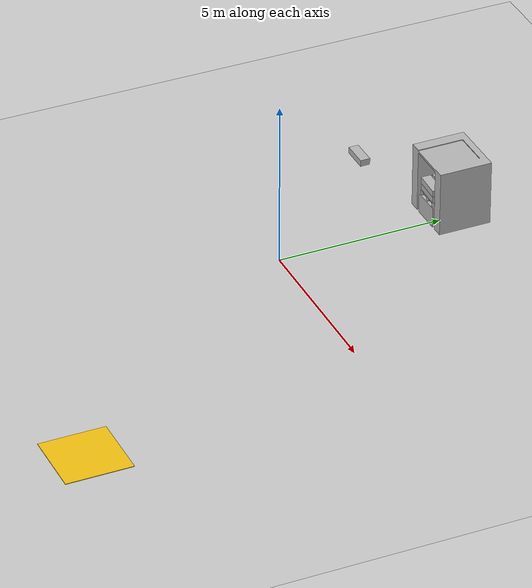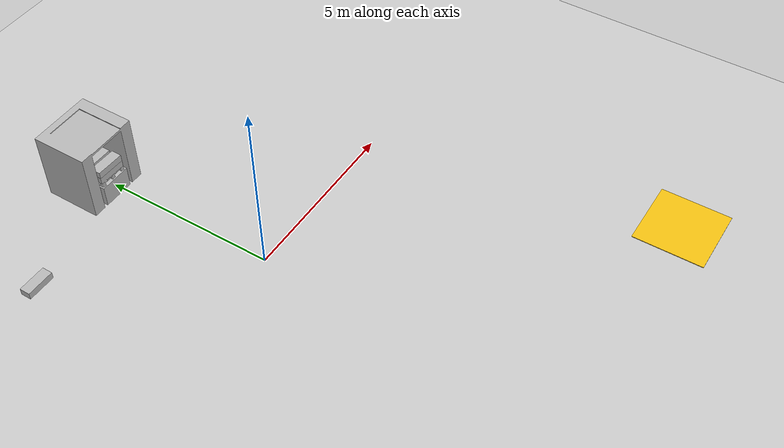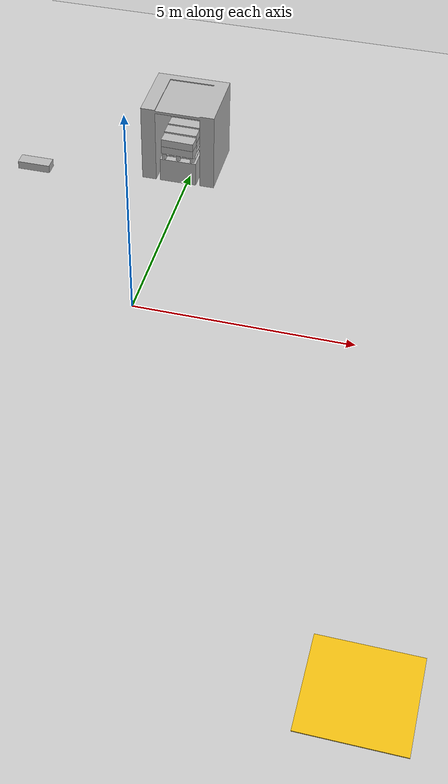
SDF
<sdf version="1.7">
 <world name="default">
  <model name="ground_plane">
   <static>1</static>
   <link name="link">
    <collision name="collision">
     <geometry><plane><normal>0 0 1</normal><size>100 100</size></plane></geometry>
     <surface>
      <contact><collide_bitmask>65535</collide_bitmask></contact>
      <friction><ode><mu>100</mu><mu2>50</mu2></ode></friction>
     </surface>
    </collision>
    <visual name="visual">
     <cast_shadows>0</cast_shadows>
     <geometry><plane><normal>0 0 1</normal><size>100 100</size></plane></geometry>
     <material>
      <script><uri>file://media/materials/scripts/gazebo.material</uri><name>Gazebo/Grey</name></script>
     </material>
    </visual>
   </link>
  </model>
  <model name="target_plane">
   <link name="link_0">
    <inertial>
     <mass>0.0753756</mass>
     <inertia>
      <ixx>0.0242871</ixx>
      <ixy>0</ixy>
      <ixz>0</ixz>
      <iyy>0.0244094</iyy>
      <iyz>0</iyz>
      <izz>0.0486918</izz>
     </inertia>
    </inertial>
    <visual name="visual">
     <geometry><box><size>1.97121 1.96626 0.019484</size></box></geometry>
     <material>
      <lighting>1</lighting>
      <script><uri>file://media/materials/scripts/gazebo.material</uri><name>Gazebo/Grey</name></script>
      <shader type="pixel"><normal_map>__default__</normal_map></shader>
      <ambient>0.961 0.761 0.067 1</ambient>
      <diffuse>0.961 0.761 0.067 1</diffuse>
      <specular>0.961 0.761 0.067 1</specular>
      <emissive>0.961 0.761 0.067 1</emissive>
     </material>
    </visual>
    <collision name="collision">
     <geometry><box><size>1.97121 1.96626 0.019484</size></box></geometry>
     <surface>
      <friction>
       <ode><mu>1</mu><mu2>1</mu2><fdir1>0 0 0</fdir1><slip1>0</slip1><slip2>0</slip2></ode>
       <torsional>
        <coefficient>1</coefficient>
        <patch_radius>0</patch_radius>
        <surface_radius>0</surface_radius>
        <use_patch_radius>1</use_patch_radius>
        <ode><slip>0</slip></ode>
       </torsional>
      </friction>
      <bounce><restitution_coefficient>0</restitution_coefficient><threshold>1e+06</threshold></bounce>
      <contact>
       <collide_without_contact>0</collide_without_contact>
       <collide_without_contact_bitmask>1</collide_without_contact_bitmask>
       <collide_bitmask>1</collide_bitmask>
       <ode>
        <soft_cfm>0</soft_cfm>
        <soft_erp>0.2</soft_erp>
        <kp>1e+13</kp>
        <kd>1</kd>
        <max_vel>0.01</max_vel>
        <min_depth>0</min_depth>
       </ode>
       <bullet>
        <split_impulse>1</split_impulse>
        <split_impulse_penetration_threshold>-0.01</split_impulse_penetration_threshold>
        <soft_cfm>0</soft_cfm>
        <soft_erp>0.2</soft_erp>
        <kp>1e+13</kp>
        <kd>1</kd>
       </bullet>
      </contact>
     </surface>
    </collision>
   </link>
   <static>1</static>
   <pose>6.58171 -8.56484 0.134058 0 -0 0</pose>
  </model>
  <model name="pacco">
   <link name="link_1">
    <inertial>
     <mass>1</mass>
     <inertia>
      <ixx>0.166667</ixx>
      <ixy>0</ixy>
      <ixz>0</ixz>
      <iyy>0.166667</iyy>
      <iyz>0</iyz>
      <izz>0.166667</izz>
     </inertia>
    </inertial>
    <visual name="visual">
     <geometry>
      <mesh>
       <uri>/ros2_ws/install/ur/share/ur/xacro/./Models/package_800x300x200/package.dae</uri>
       <scale>1 1 1</scale>
      </mesh>
     </geometry>
     <material>
      <lighting>1</lighting>
      <script>
       <uri>file://assets/materials/scripts/package.material</uri>
       <uri>file://assets/materials/textures/texture_package.png</uri>
       <name>PackageSimod</name>
      </script>
      <shader type="pixel"/>
     </material>
    </visual>
    <collision name="collision_1">
     <geometry><box><size>0.8 0.3 0.2</size></box></geometry>
     <surface>
      <friction>
       <ode><mu>1</mu><mu2>1</mu2><fdir1>0 0 0</fdir1><slip1>0</slip1><slip2>0</slip2></ode>
       <torsional>
        <coefficient>1</coefficient>
        <patch_radius>0</patch_radius>
        <surface_radius>0</surface_radius>
        <use_patch_radius>1</use_patch_radius>
        <ode><slip>0</slip></ode>
       </torsional>
      </friction>
      <bounce><restitution_coefficient>0</restitution_coefficient><threshold>1e+06</threshold></bounce>
      <contact>
       <collide_without_contact>0</collide_without_contact>
       <collide_without_contact_bitmask>1</collide_without_contact_bitmask>
       <collide_bitmask>1</collide_bitmask>
       <ode>
        <soft_cfm>0</soft_cfm>
        <soft_erp>0.2</soft_erp>
        <kp>1e+13</kp>
        <kd>1</kd>
        <max_vel>0.01</max_vel>
        <min_depth>0</min_depth>
       </ode>
       <bullet>
        <split_impulse>1</split_impulse>
        <split_impulse_penetration_threshold>-0.01</split_impulse_penetration_threshold>
        <soft_cfm>0</soft_cfm>
        <soft_erp>0.2</soft_erp>
        <kp>1e+13</kp>
        <kd>1</kd>
       </bullet>
      </contact>
     </surface>
    </collision>
   </link>
   <static>0</static>
   <pose>-0.261522 5.19855 0.851245 0.00213 -0.000287 -0.015455</pose>
  </model>
  <model name="pacco_clone">
   <link name="link_1">
    <inertial>
     <mass>1</mass>
     <inertia>
      <ixx>0.166667</ixx>
      <ixy>0</ixy>
      <ixz>0</ixz>
      <iyy>0.166667</iyy>
      <iyz>0</iyz>
      <izz>0.166667</izz>
     </inertia>
    </inertial>
    <visual name="visual">
     <geometry>
      <mesh>
       <uri>/ros2_ws/install/ur/share/ur/xacro/./Models/package_800x300x200/package.dae</uri>
       <scale>1 1 1</scale>
      </mesh>
     </geometry>
     <material>
      <lighting>1</lighting>
      <script>
       <uri>file://assets/materials/scripts/package.material</uri>
       <uri>file://assets/materials/textures/texture_package.png</uri>
       <name>PackageSimod</name>
      </script>
      <shader type="pixel"/>
     </material>
    </visual>
    <collision name="collision_1">
     <geometry><box><size>0.8 0.3 0.2</size></box></geometry>
     <surface>
      <friction>
       <ode><mu>1</mu><mu2>1</mu2><fdir1>0 0 0</fdir1><slip1>0</slip1><slip2>0</slip2></ode>
       <torsional>
        <coefficient>1</coefficient>
        <patch_radius>0</patch_radius>
        <surface_radius>0</surface_radius>
        <use_patch_radius>1</use_patch_radius>
        <ode><slip>0</slip></ode>
       </torsional>
      </friction>
      <bounce><restitution_coefficient>0</restitution_coefficient><threshold>1e+06</threshold></bounce>
      <contact>
       <collide_without_contact>0</collide_without_contact>
       <collide_without_contact_bitmask>1</collide_without_contact_bitmask>
       <collide_bitmask>1</collide_bitmask>
       <ode>
        <soft_cfm>0</soft_cfm>
        <soft_erp>0.2</soft_erp>
        <kp>1e+13</kp>
        <kd>1</kd>
        <max_vel>0.01</max_vel>
        <min_depth>0</min_depth>
       </ode>
       <bullet>
        <split_impulse>1</split_impulse>
        <split_impulse_penetration_threshold>-0.01</split_impulse_penetration_threshold>
        <soft_cfm>0</soft_cfm>
        <soft_erp>0.2</soft_erp>
        <kp>1e+13</kp>
        <kd>1</kd>
       </bullet>
      </contact>
     </surface>
    </collision>
   </link>
   <static>0</static>
   <pose>-0.235212 5.53953 0.840985 -0.00312 -0.003665 -0.029718</pose>
  </model>
  <model name="pacco_clone_0">
   <link name="link_1">
    <inertial>
     <mass>1</mass>
     <inertia>
      <ixx>0.166667</ixx>
      <ixy>0</ixy>
      <ixz>0</ixz>
      <iyy>0.166667</iyy>
      <iyz>0</iyz>
      <izz>0.166667</izz>
     </inertia>
    </inertial>
    <visual name="visual">
     <geometry>
      <mesh>
       <uri>/ros2_ws/install/ur/share/ur/xacro/./Models/package_800x300x200/package.dae</uri>
       <scale>1 1 1</scale>
      </mesh>
     </geometry>
     <material>
      <lighting>1</lighting>
      <script>
       <uri>file://assets/materials/scripts/package.material</uri>
       <uri>file://assets/materials/textures/texture_package.png</uri>
       <name>PackageSimod</name>
      </script>
      <shader type="pixel"/>
     </material>
    </visual>
    <collision name="collision_1">
     <geometry><box><size>0.8 0.3 0.2</size></box></geometry>
     <surface>
      <friction>
       <ode><mu>1</mu><mu2>1</mu2><fdir1>0 0 0</fdir1><slip1>0</slip1><slip2>0</slip2></ode>
       <torsional>
        <coefficient>1</coefficient>
        <patch_radius>0</patch_radius>
        <surface_radius>0</surface_radius>
        <use_patch_radius>1</use_patch_radius>
        <ode><slip>0</slip></ode>
       </torsional>
      </friction>
      <bounce><restitution_coefficient>0</restitution_coefficient><threshold>1e+06</threshold></bounce>
      <contact>
       <collide_without_contact>0</collide_without_contact>
       <collide_without_contact_bitmask>1</collide_without_contact_bitmask>
       <collide_bitmask>1</collide_bitmask>
       <ode>
        <soft_cfm>0</soft_cfm>
        <soft_erp>0.2</soft_erp>
        <kp>1e+13</kp>
        <kd>1</kd>
        <max_vel>0.01</max_vel>
        <min_depth>0</min_depth>
       </ode>
       <bullet>
        <split_impulse>1</split_impulse>
        <split_impulse_penetration_threshold>-0.01</split_impulse_penetration_threshold>
        <soft_cfm>0</soft_cfm>
        <soft_erp>0.2</soft_erp>
        <kp>1e+13</kp>
        <kd>1</kd>
       </bullet>
      </contact>
     </surface>
    </collision>
   </link>
   <static>0</static>
   <pose>-0.23979 5.8947 0.859475 -0.061979 -0.000919 -0.011952</pose>
  </model>
  <model name="pacco_clone_1">
   <link name="link_1">
    <inertial>
     <mass>1</mass>
     <inertia>
      <ixx>0.166667</ixx>
      <ixy>0</ixy>
      <ixz>0</ixz>
      <iyy>0.166667</iyy>
      <iyz>0</iyz>
      <izz>0.166667</izz>
     </inertia>
    </inertial>
    <visual name="visual">
     <geometry>
      <mesh>
       <uri>/ros2_ws/install/ur/share/ur/xacro/./Models/package_800x300x200/package.dae</uri>
       <scale>1 1 1</scale>
      </mesh>
     </geometry>
     <material>
      <lighting>1</lighting>
      <script>
       <uri>file://assets/materials/scripts/package.material</uri>
       <uri>file://assets/materials/textures/texture_package.png</uri>
       <name>PackageSimod</name>
      </script>
      <shader type="pixel"/>
     </material>
    </visual>
    <collision name="collision_1">
     <geometry><box><size>0.8 0.3 0.2</size></box></geometry>
     <surface>
      <friction>
       <ode><mu>1</mu><mu2>1</mu2><fdir1>0 0 0</fdir1><slip1>0</slip1><slip2>0</slip2></ode>
       <torsional>
        <coefficient>1</coefficient>
        <patch_radius>0</patch_radius>
        <surface_radius>0</surface_radius>
        <use_patch_radius>1</use_patch_radius>
        <ode><slip>0</slip></ode>
       </torsional>
      </friction>
      <bounce><restitution_coefficient>0</restitution_coefficient><threshold>1e+06</threshold></bounce>
      <contact>
       <collide_without_contact>0</collide_without_contact>
       <collide_without_contact_bitmask>1</collide_without_contact_bitmask>
       <collide_bitmask>1</collide_bitmask>
       <ode>
        <soft_cfm>0</soft_cfm>
        <soft_erp>0.2</soft_erp>
        <kp>1e+13</kp>
        <kd>1</kd>
        <max_vel>0.01</max_vel>
        <min_depth>0</min_depth>
       </ode>
       <bullet>
        <split_impulse>1</split_impulse>
        <split_impulse_penetration_threshold>-0.01</split_impulse_penetration_threshold>
        <soft_cfm>0</soft_cfm>
        <soft_erp>0.2</soft_erp>
        <kp>1e+13</kp>
        <kd>1</kd>
       </bullet>
      </contact>
     </surface>
    </collision>
   </link>
   <static>0</static>
   <pose>-0.249211 4.84091 0.860377 -0.002452 -1.4e-05 -0.036946</pose>
  </model>
  <model name="pacco_clone_2">
   <link name="link_1">
    <inertial>
     <mass>1</mass>
     <inertia>
      <ixx>0.166667</ixx>
      <ixy>0</ixy>
      <ixz>0</ixz>
      <iyy>0.166667</iyy>
      <iyz>0</iyz>
      <izz>0.166667</izz>
     </inertia>
    </inertial>
    <visual name="visual">
     <geometry>
      <mesh>
       <uri>/ros2_ws/install/ur/share/ur/xacro/./Models/package_800x300x200/package.dae</uri>
       <scale>1 1 1</scale>
      </mesh>
     </geometry>
     <material>
      <lighting>1</lighting>
      <script>
       <uri>file://assets/materials/scripts/package.material</uri>
       <uri>file://assets/materials/textures/texture_package.png</uri>
       <name>PackageSimod</name>
      </script>
      <shader type="pixel"/>
     </material>
    </visual>
    <collision name="collision_1">
     <geometry><box><size>0.8 0.3 0.2</size></box></geometry>
     <surface>
      <friction>
       <ode><mu>1</mu><mu2>1</mu2><fdir1>0 0 0</fdir1><slip1>0</slip1><slip2>0</slip2></ode>
       <torsional>
        <coefficient>1</coefficient>
        <patch_radius>0</patch_radius>
        <surface_radius>0</surface_radius>
        <use_patch_radius>1</use_patch_radius>
        <ode><slip>0</slip></ode>
       </torsional>
      </friction>
      <bounce><restitution_coefficient>0</restitution_coefficient><threshold>1e+06</threshold></bounce>
      <contact>
       <collide_without_contact>0</collide_without_contact>
       <collide_without_contact_bitmask>1</collide_without_contact_bitmask>
       <collide_bitmask>1</collide_bitmask>
       <ode>
        <soft_cfm>0</soft_cfm>
        <soft_erp>0.2</soft_erp>
        <kp>1e+13</kp>
        <kd>1</kd>
        <max_vel>0.01</max_vel>
        <min_depth>0</min_depth>
       </ode>
       <bullet>
        <split_impulse>1</split_impulse>
        <split_impulse_penetration_threshold>-0.01</split_impulse_penetration_threshold>
        <soft_cfm>0</soft_cfm>
        <soft_erp>0.2</soft_erp>
        <kp>1e+13</kp>
        <kd>1</kd>
       </bullet>
      </contact>
     </surface>
    </collision>
   </link>
   <static>0</static>
   <pose>-3.74289 4.21634 0.220638 0.002855 -0.001862 0.000318</pose>
  </model>
  <model name="muraUse1">
   <link name="link_0">
    <inertial>
     <mass>1</mass>
     <inertia>
      <ixx>0.166667</ixx>
      <ixy>0</ixy>
      <ixz>0</ixz>
      <iyy>0.166667</iyy>
      <iyz>0</iyz>
      <izz>0.166667</izz>
     </inertia>
    </inertial>
    <pose>-0 3e-06 -0 0 0 -1.5708</pose>
    <visual name="visual">
     <geometry><mesh><uri>/ros2_ws/assets/usecase2_meshed_2strati.dae</uri><scale>1 1 1</scale></mesh></geometry>
     <material>
      <lighting>1</lighting>
      <script>
       <uri>file://assets/materials/scripts/usecase2_meshed_1strato.material</uri>
       <uri>file://assets/materials/textures/usecase2_meshed_1strato.jpg</uri>
       <name>SimodLoadTgt2</name>
      </script>
      <shader type="pixel"/>
     </material>
    </visual>
    <collision name="collision">
     <geometry><mesh><uri>/ros2_ws/assets/usecase2_meshed_2strati.dae</uri><scale>1 1 1</scale></mesh></geometry>
     <surface>
      <friction>
       <ode><mu>1</mu><mu2>1</mu2><fdir1>0 0 0</fdir1><slip1>0</slip1><slip2>0</slip2></ode>
       <torsional>
        <coefficient>1</coefficient>
        <patch_radius>0</patch_radius>
        <surface_radius>0</surface_radius>
        <use_patch_radius>1</use_patch_radius>
        <ode><slip>0</slip></ode>
       </torsional>
      </friction>
      <bounce><restitution_coefficient>0</restitution_coefficient><threshold>1e+06</threshold></bounce>
      <contact>
       <collide_without_contact>0</collide_without_contact>
       <collide_without_contact_bitmask>1</collide_without_contact_bitmask>
       <collide_bitmask>1</collide_bitmask>
       <ode>
        <soft_cfm>0</soft_cfm>
        <soft_erp>0.2</soft_erp>
        <kp>1e+13</kp>
        <kd>1</kd>
        <max_vel>0.01</max_vel>
        <min_depth>0</min_depth>
       </ode>
       <bullet>
        <split_impulse>1</split_impulse>
        <split_impulse_penetration_threshold>-0.01</split_impulse_penetration_threshold>
        <soft_cfm>0</soft_cfm>
        <soft_erp>0.2</soft_erp>
        <kp>1e+13</kp>
        <kd>1</kd>
       </bullet>
      </contact>
     </surface>
    </collision>
   </link>
   <static>1</static>
   <pose>-0.235411 6.15644 0 -1e-06 3e-06 0.00263</pose>
  </model>
  <model name="pacco_clone_3">
   <link name="link_1">
    <inertial>
     <mass>1</mass>
     <inertia>
      <ixx>0.166667</ixx>
      <ixy>0</ixy>
      <ixz>0</ixz>
      <iyy>0.166667</iyy>
      <iyz>0</iyz>
      <izz>0.166667</izz>
     </inertia>
    </inertial>
    <visual name="visual">
     <geometry>
      <mesh>
       <uri>/ros2_ws/install/ur/share/ur/xacro/./Models/package_800x300x200/package.dae</uri>
       <scale>1 1 1</scale>
      </mesh>
     </geometry>
     <material>
      <lighting>1</lighting>
      <script>
       <uri>file://assets/materials/scripts/package.material</uri>
       <uri>file://assets/materials/textures/texture_package.png</uri>
       <name>PackageSimod</name>
      </script>
      <shader type="pixel"/>
     </material>
    </visual>
    <collision name="collision_1">
     <geometry><box><size>0.8 0.3 0.2</size></box></geometry>
     <surface>
      <friction>
       <ode><mu>1</mu><mu2>1</mu2><fdir1>0 0 0</fdir1><slip1>0</slip1><slip2>0</slip2></ode>
       <torsional>
        <coefficient>1</coefficient>
        <patch_radius>0</patch_radius>
        <surface_radius>0</surface_radius>
        <use_patch_radius>1</use_patch_radius>
        <ode><slip>0</slip></ode>
       </torsional>
      </friction>
      <bounce><restitution_coefficient>0</restitution_coefficient><threshold>1e+06</threshold></bounce>
      <contact>
       <collide_without_contact>0</collide_without_contact>
       <collide_without_contact_bitmask>1</collide_without_contact_bitmask>
       <collide_bitmask>1</collide_bitmask>
       <ode>
        <soft_cfm>0</soft_cfm>
        <soft_erp>0.2</soft_erp>
        <kp>1e+13</kp>
        <kd>1</kd>
        <max_vel>0.01</max_vel>
        <min_depth>0</min_depth>
       </ode>
       <bullet>
        <split_impulse>1</split_impulse>
        <split_impulse_penetration_threshold>-0.01</split_impulse_penetration_threshold>
        <soft_cfm>0</soft_cfm>
        <soft_erp>0.2</soft_erp>
        <kp>1e+13</kp>
        <kd>1</kd>
       </bullet>
      </contact>
     </surface>
    </collision>
   </link>
   <static>0</static>
   <pose>-0.268628 5.20803 1.05123 0.002128 -0.000293 -0.013248</pose>
  </model>
  <model name="pacco_clone_4">
   <link name="link_1">
    <inertial>
     <mass>1</mass>
     <inertia>
      <ixx>0.166667</ixx>
      <ixy>0</ixy>
      <ixz>0</ixz>
      <iyy>0.166667</iyy>
      <iyz>0</iyz>
      <izz>0.166667</izz>
     </inertia>
    </inertial>
    <visual name="visual">
     <geometry>
      <mesh>
       <uri>/ros2_ws/install/ur/share/ur/xacro/./Models/package_800x300x200/package.dae</uri>
       <scale>1 1 1</scale>
      </mesh>
     </geometry>
     <material>
      <lighting>1</lighting>
      <script>
       <uri>file://assets/materials/scripts/package.material</uri>
       <uri>file://assets/materials/textures/texture_package.png</uri>
       <name>PackageSimod</name>
      </script>
      <shader type="pixel"/>
     </material>
    </visual>
    <collision name="collision_1">
     <geometry><box><size>0.8 0.3 0.2</size></box></geometry>
     <surface>
      <friction>
       <ode><mu>1</mu><mu2>1</mu2><fdir1>0 0 0</fdir1><slip1>0</slip1><slip2>0</slip2></ode>
       <torsional>
        <coefficient>1</coefficient>
        <patch_radius>0</patch_radius>
        <surface_radius>0</surface_radius>
        <use_patch_radius>1</use_patch_radius>
        <ode><slip>0</slip></ode>
       </torsional>
      </friction>
      <bounce><restitution_coefficient>0</restitution_coefficient><threshold>1e+06</threshold></bounce>
      <contact>
       <collide_without_contact>0</collide_without_contact>
       <collide_without_contact_bitmask>1</collide_without_contact_bitmask>
       <collide_bitmask>1</collide_bitmask>
       <ode>
        <soft_cfm>0</soft_cfm>
        <soft_erp>0.2</soft_erp>
        <kp>1e+13</kp>
        <kd>1</kd>
        <max_vel>0.01</max_vel>
        <min_depth>0</min_depth>
       </ode>
       <bullet>
        <split_impulse>1</split_impulse>
        <split_impulse_penetration_threshold>-0.01</split_impulse_penetration_threshold>
        <soft_cfm>0</soft_cfm>
        <soft_erp>0.2</soft_erp>
        <kp>1e+13</kp>
        <kd>1</kd>
       </bullet>
      </contact>
     </surface>
    </collision>
   </link>
   <static>0</static>
   <pose>-0.242008 5.90051 1.0595 -0.061985 -1.5e-05 0.002617</pose>
  </model>
  <model name="pacco_clone_5">
   <link name="link_1">
    <inertial>
     <mass>1</mass>
     <inertia>
      <ixx>0.166667</ixx>
      <ixy>0</ixy>
      <ixz>0</ixz>
      <iyy>0.166667</iyy>
      <iyz>0</iyz>
      <izz>0.166667</izz>
     </inertia>
    </inertial>
    <visual name="visual">
     <geometry>
      <mesh>
       <uri>/ros2_ws/install/ur/share/ur/xacro/./Models/package_800x300x200/package.dae</uri>
       <scale>1 1 1</scale>
      </mesh>
     </geometry>
     <material>
      <lighting>1</lighting>
      <script>
       <uri>file://assets/materials/scripts/package.material</uri>
       <uri>file://assets/materials/textures/texture_package.png</uri>
       <name>PackageSimod</name>
      </script>
      <shader type="pixel"/>
     </material>
    </visual>
    <collision name="collision_1">
     <geometry><box><size>0.8 0.3 0.2</size></box></geometry>
     <surface>
      <friction>
       <ode><mu>1</mu><mu2>1</mu2><fdir1>0 0 0</fdir1><slip1>0</slip1><slip2>0</slip2></ode>
       <torsional>
        <coefficient>1</coefficient>
        <patch_radius>0</patch_radius>
        <surface_radius>0</surface_radius>
        <use_patch_radius>1</use_patch_radius>
        <ode><slip>0</slip></ode>
       </torsional>
      </friction>
      <bounce><restitution_coefficient>0</restitution_coefficient><threshold>1e+06</threshold></bounce>
      <contact>
       <collide_without_contact>0</collide_without_contact>
       <collide_without_contact_bitmask>1</collide_without_contact_bitmask>
       <collide_bitmask>1</collide_bitmask>
       <ode>
        <soft_cfm>0</soft_cfm>
        <soft_erp>0.2</soft_erp>
        <kp>1e+13</kp>
        <kd>1</kd>
        <max_vel>0.01</max_vel>
        <min_depth>0</min_depth>
       </ode>
       <bullet>
        <split_impulse>1</split_impulse>
        <split_impulse_penetration_threshold>-0.01</split_impulse_penetration_threshold>
        <soft_cfm>0</soft_cfm>
        <soft_erp>0.2</soft_erp>
        <kp>1e+13</kp>
        <kd>1</kd>
       </bullet>
      </contact>
     </surface>
    </collision>
   </link>
   <static>0</static>
   <pose>-0.271707 5.57247 1.04072 -0.003176 -0.003625 -0.01533</pose>
  </model>
  <model name="pacco_clone_6">
   <link name="link_1">
    <inertial>
     <mass>1</mass>
     <inertia>
      <ixx>0.166667</ixx>
      <ixy>0</ixy>
      <ixz>0</ixz>
      <iyy>0.166667</iyy>
      <iyz>0</iyz>
      <izz>0.166667</izz>
     </inertia>
    </inertial>
    <visual name="visual">
     <geometry>
      <mesh>
       <uri>/ros2_ws/install/ur/share/ur/xacro/./Models/package_800x300x200/package.dae</uri>
       <scale>1 1 1</scale>
      </mesh>
     </geometry>
     <material>
      <lighting>1</lighting>
      <script>
       <uri>file://assets/materials/scripts/package.material</uri>
       <uri>file://assets/materials/textures/texture_package.png</uri>
       <name>PackageSimod</name>
      </script>
      <shader type="pixel"/>
     </material>
    </visual>
    <collision name="collision_1">
     <geometry><box><size>0.8 0.3 0.2</size></box></geometry>
     <surface>
      <friction>
       <ode><mu>1</mu><mu2>1</mu2><fdir1>0 0 0</fdir1><slip1>0</slip1><slip2>0</slip2></ode>
       <torsional>
        <coefficient>1</coefficient>
        <patch_radius>0</patch_radius>
        <surface_radius>0</surface_radius>
        <use_patch_radius>1</use_patch_radius>
        <ode><slip>0</slip></ode>
       </torsional>
      </friction>
      <bounce><restitution_coefficient>0</restitution_coefficient><threshold>1e+06</threshold></bounce>
      <contact>
       <collide_without_contact>0</collide_without_contact>
       <collide_without_contact_bitmask>1</collide_without_contact_bitmask>
       <collide_bitmask>1</collide_bitmask>
       <ode>
        <soft_cfm>0</soft_cfm>
        <soft_erp>0.2</soft_erp>
        <kp>1e+13</kp>
        <kd>1</kd>
        <max_vel>0.01</max_vel>
        <min_depth>0</min_depth>
       </ode>
       <bullet>
        <split_impulse>1</split_impulse>
        <split_impulse_penetration_threshold>-0.01</split_impulse_penetration_threshold>
        <soft_cfm>0</soft_cfm>
        <soft_erp>0.2</soft_erp>
        <kp>1e+13</kp>
        <kd>1</kd>
       </bullet>
      </contact>
     </surface>
    </collision>
   </link>
   <static>0</static>
   <pose>-0.249702 4.83782 1.06038 -0.002452 -2e-06 -0.032428</pose>
  </model>
 </world>
</sdf>
